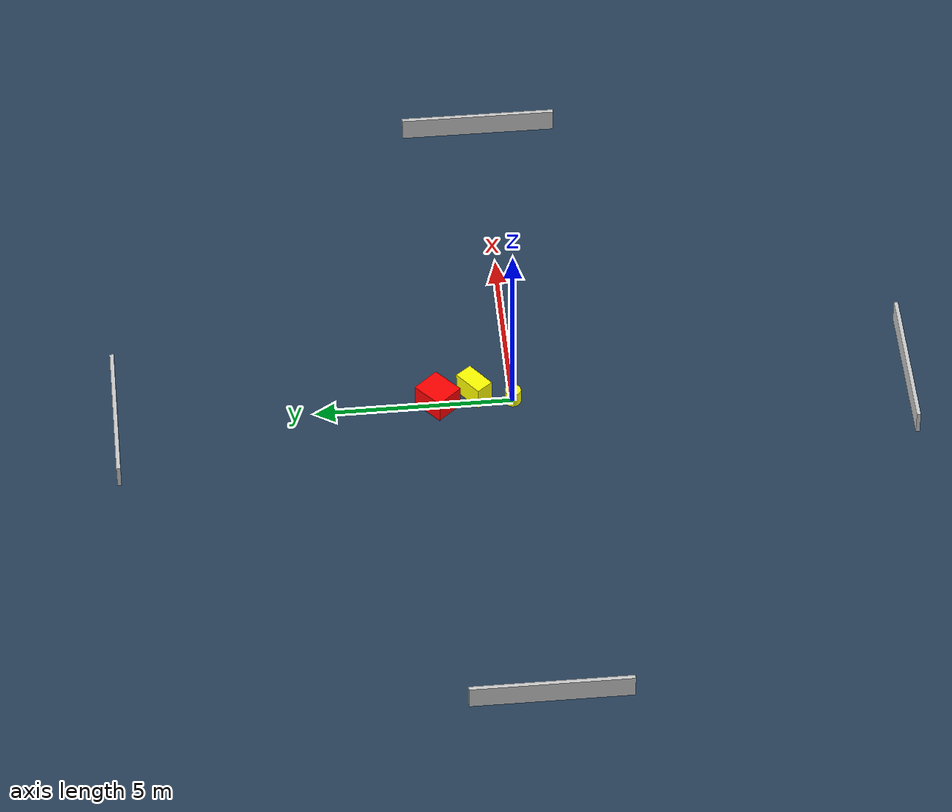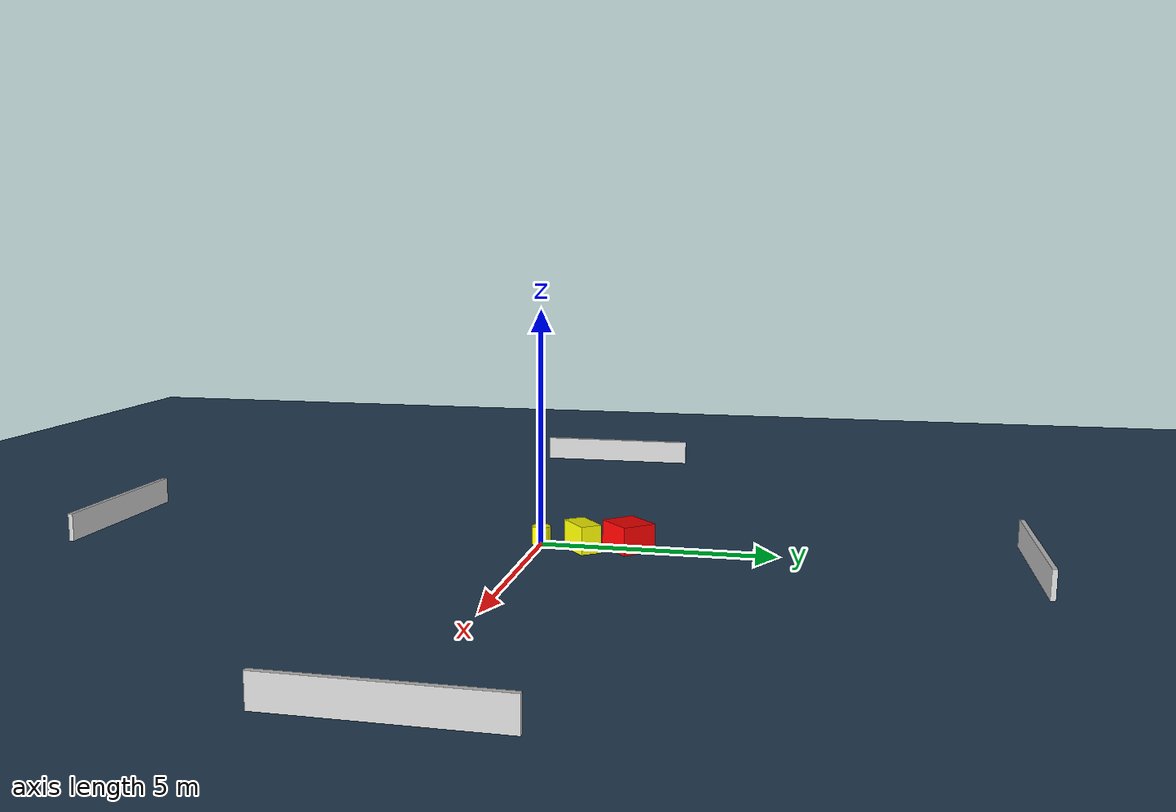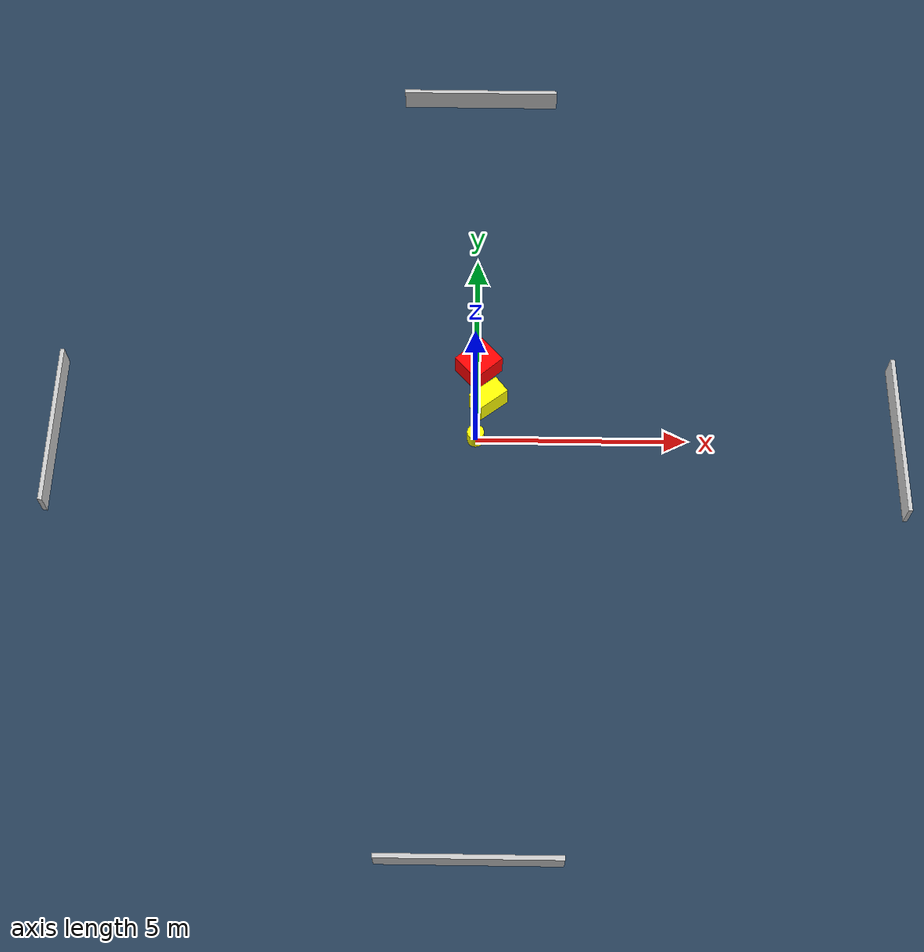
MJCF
<?xml version="1.0" ?>
<mujoco model="generated_environment">
  <option timestep="0.01" integrator="RK4" cone="elliptic"/>
  <default>
    <geom density="1"/>
  </default>
  <asset>
    <texture builtin="gradient" height="3072" name="skybox" rgb1="0.3 0.5 0.7" rgb2="0 0 0" type="skybox" width="512"/>
    <texture builtin="checker" height="300" name="groundplane" rgb1="0.2 0.3 0.4" rgb2="0.1 0.2 0.3" type="2d" width="300"/>
    <material name="groundplane" reflectance="0.2" texrepeat="5 5" texture="groundplane"/>
  </asset>
  <worldbody>
    <light dir="0 0 -1" directional="true" pos="0 0 1.5"/>
    <geom condim="3" friction="0.5 0.005 0.001" material="groundplane" name="floor" pos="0 0 0" size="0 0 0.05" type="plane"/>
    <body name="walls">
      <geom name="wall_1" condim="4" pos="-10.0 0.0 0.3" rgba="0.800000011920929 0.800000011920929 0.800000011920929 1.0" size="0.05 2.0 0.3" type="box"/>
      <geom name="wall_2" condim="4" pos="10.0 0.0 0.3" rgba="0.800000011920929 0.800000011920929 0.800000011920929 1.0" size="0.05 2.0 0.3" type="box"/>
      <geom name="wall_3" condim="4" pos="0.0 -10.0 0.3" rgba="0.800000011920929 0.800000011920929 0.800000011920929 1.0" size="2.0 0.05 0.3" type="box"/>
      <geom name="wall_4" condim="4" pos="0.0 10.0 0.3" rgba="0.800000011920929 0.800000011920929 0.800000011920929 1.0" size="2.0 0.05 0.3" type="box"/>
    </body>
    <body name="robot">
      <joint name="joint_x" type="slide" pos="0 0 0" axis="1 0 0"/>
      <joint name="joint_y" type="slide" pos="0 0 0" axis="0 1 0"/>
      <geom name="robot" type="cylinder" pos="0.0 0.0 0.2" size="0.2 0.2 0.0" mass="5.0" friction="1.0 0.005 0.0001" condim="4" rgba="1.0 1.0 0.0 1.0"/>
    </body>
    <body name="obstacle_1_movable">
      <geom name="obstacle_1_movable" condim="4" pos="0.29003077518201376 0.9574619072479291 0.3" euler="0 0 307.9700407640058" friction="0.0 0.005 0.001" rgba="1.0 1.0 0.0 1.0" size="0.2331316402825394 0.4033394274683347 0.3" type="box" mass="0.1"/>
      <joint type="free"/>
    </body>
    <body name="obstacle_2_static">
      <geom name="obstacle_2_static" condim="4" pos="0.05133325907827387 1.8951882335771715 0.3" euler="0 0 131.61218581685577" friction="0.0 0.005 0.001" rgba="1.0 0.0 0.0 1.0" size="0.37872318417173023 0.4284172848679094 0.3" type="box"/>
    </body>
  </worldbody>
  <actuator>
    <motor name="actuator_x" joint="joint_x" gear="1" ctrlrange="-1 1"/>
    <motor name="actuator_y" joint="joint_y" gear="1" ctrlrange="-1 1"/>
  </actuator>
</mujoco>
